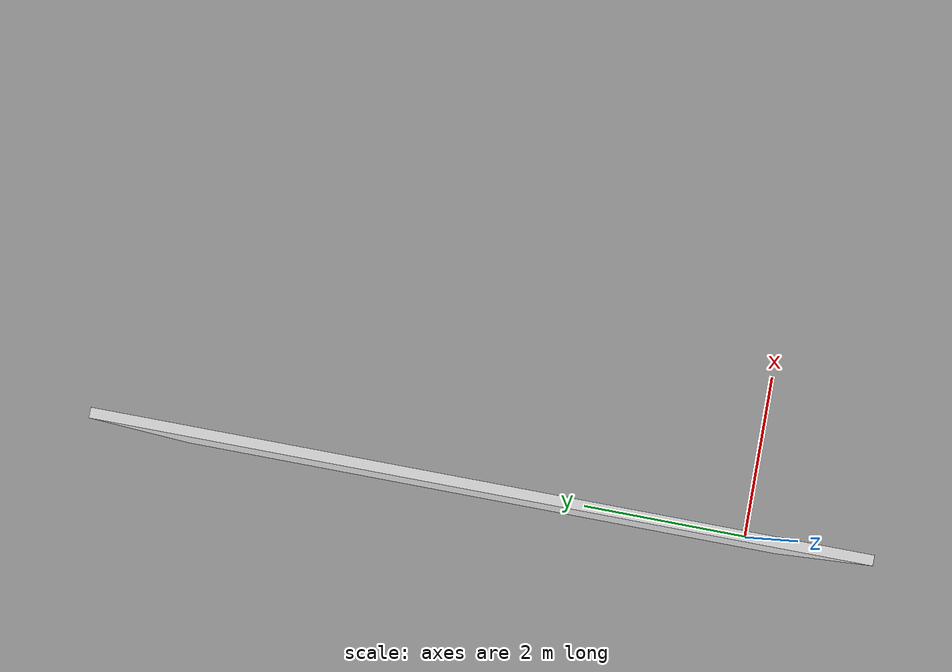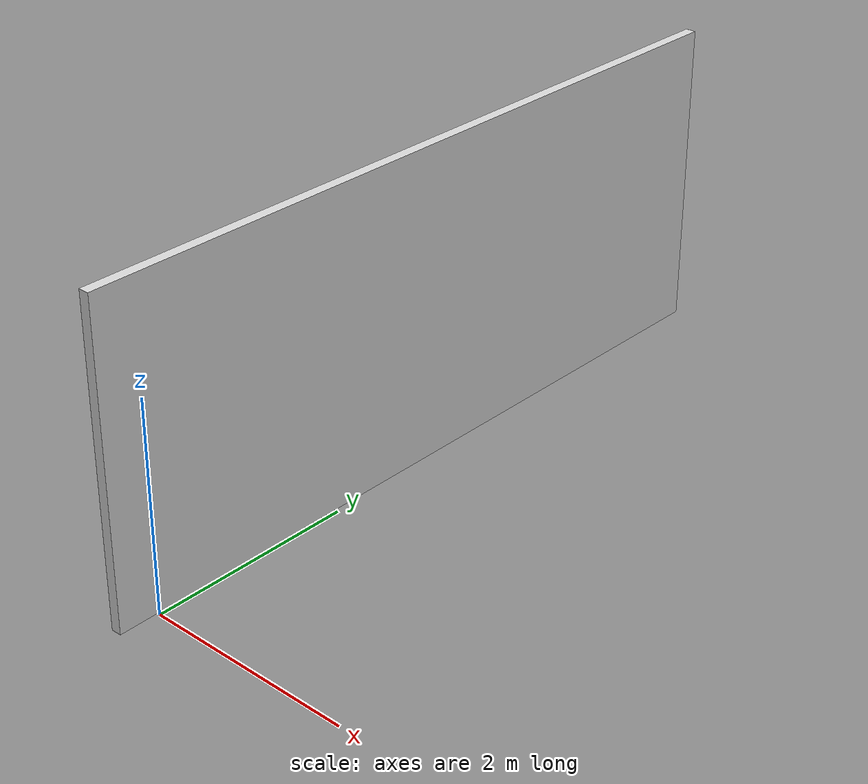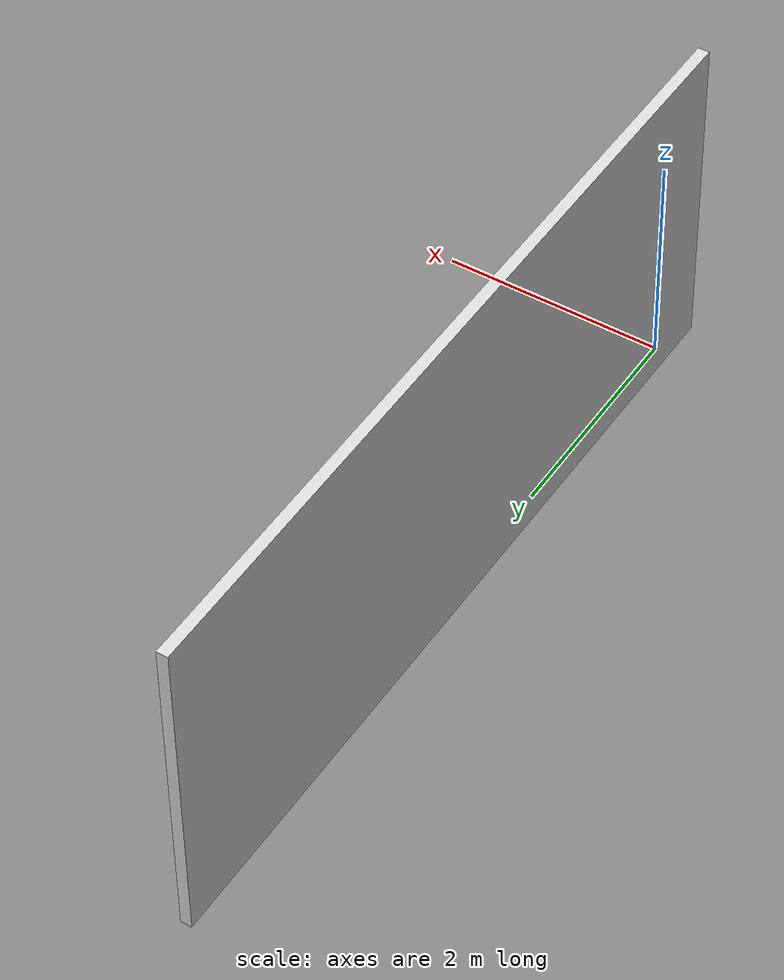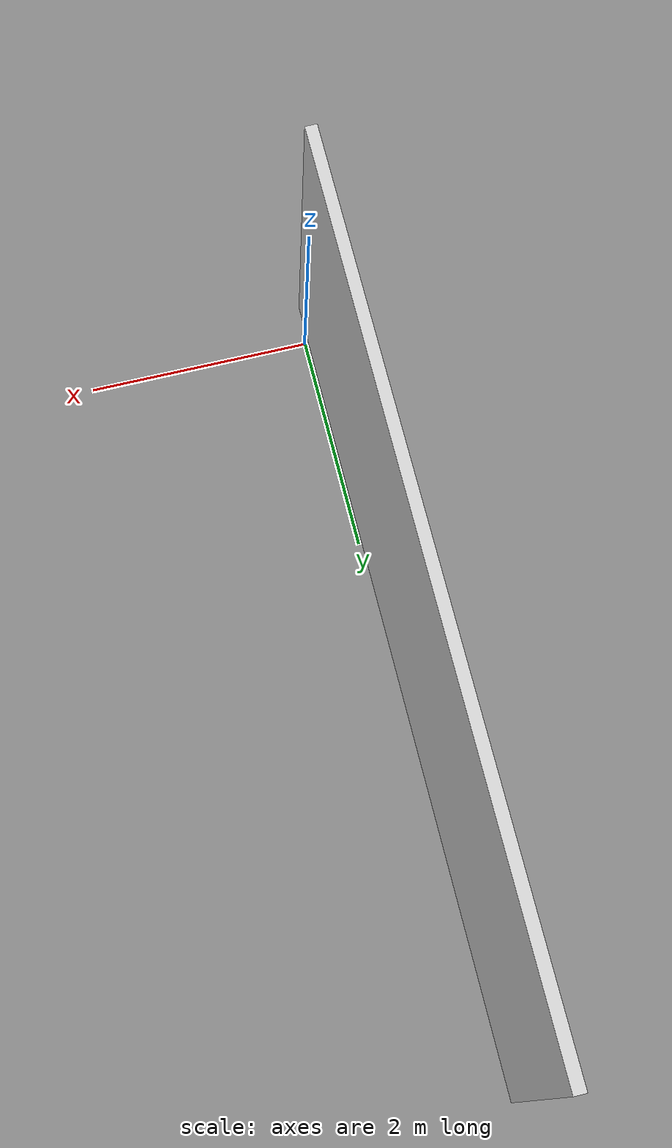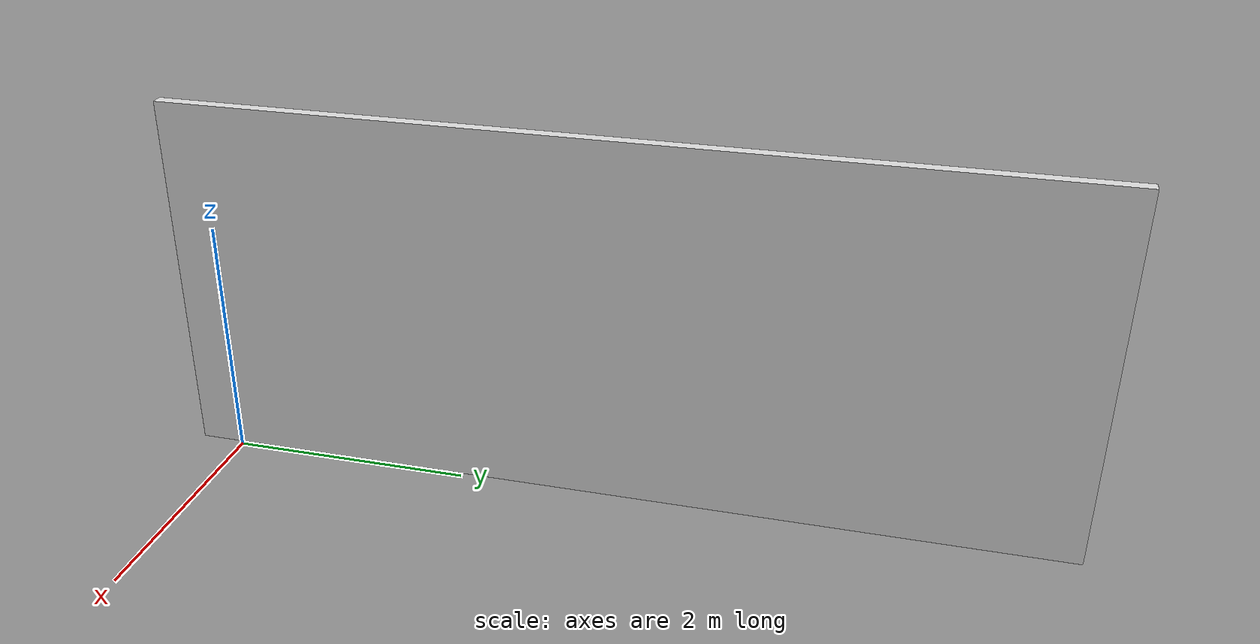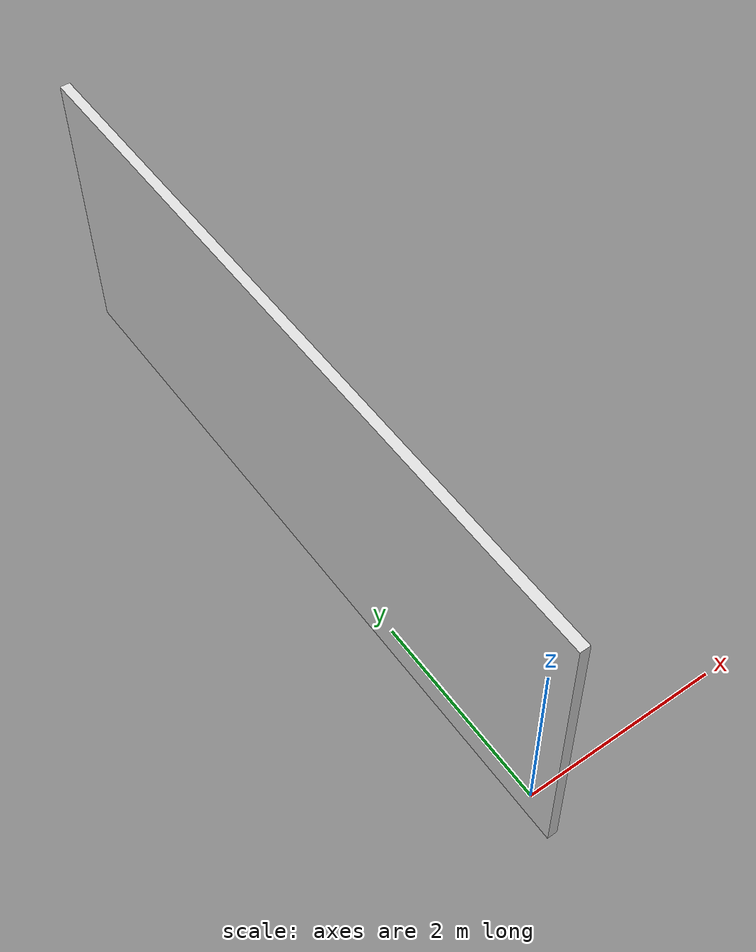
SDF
<?xml version="1.0" ?>
<!-- tmp sdf file generated from LISDF -->
<sdf version="1.9">
  <world name="tmp_world">

<model name="wall">
  <static>True</static>
  <pose>-0.0820000022649765 3.2860000133514404 1.5089999437332153 0.0 -0.0 0.0</pose>
  <link name="box">

    <inertial>
      <mass>0</mass>
      <pose>0.0 0.0 0.0 0.0 -0.0 0.0</pose>
      <inertia>
        <ixx>0</ixx>
        <ixy>0</ixy>
        <ixz>0</ixz>
        <iyy>0</iyy>
        <iyz>0</iyz>
        <izz>0</izz>
      </inertia>
    </inertial>
    <collision name="box_collision">>
      <pose>0.0 0.0 0.0 0.0 -0.0 0.0</pose>
      <geometry>
        <box>
          <size>0.10000000149011612 7.335000038146973 3.0179998874664307</size>
        </box>
      </geometry>

    </collision>
    <visual name="box_visual">
      <pose>0.0 0.0 0.0 0.0 -0.0 0.0</pose>
      <geometry>
        <box>
          <size>0.10000000149011612 7.335000038146973 3.0179998874664307</size>
        </box>
      </geometry>
      <material>
        <ambient>1.0 1.0 1.0 1.0</ambient>
        <diffuse>0.8500000238418579 0.8500000238418579 0.8500000238418579 1.0</diffuse>
        <specular>0.0 0.0 0.0 1.0</specular>
        <emissive>0.0 0.0 0.0 1.0</emissive>
      </material>
      <cast_shadows>True</cast_shadows>
    </visual>
    <self_collide>True</self_collide>
  </link>

</model>

  </world>
</sdf>
